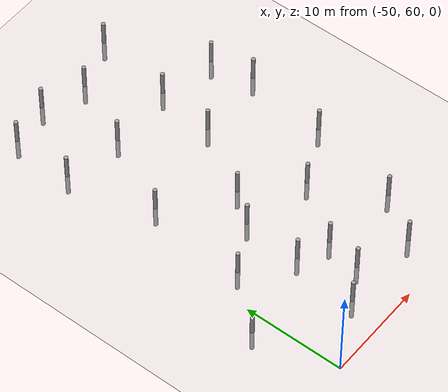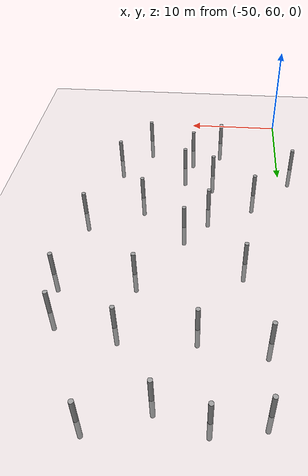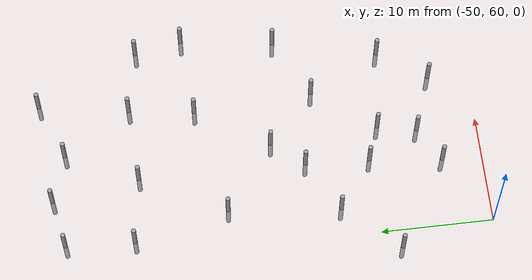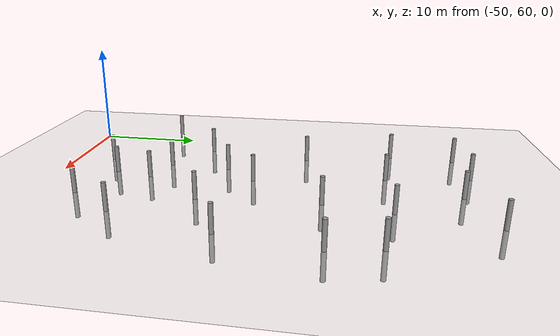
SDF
<sdf version="1.6">
 <world name="default">
  <model name="ground_plane">
   <static>1</static>
   <link name="link">
    <collision name="collision">
     <geometry><plane><normal>0 0 1</normal><size>100 100</size></plane></geometry>
     <surface><friction><ode><mu>100</mu><mu2>50</mu2></ode></friction></surface>
    </collision>
    <visual name="visual">
     <cast_shadows>0</cast_shadows>
     <geometry><plane><normal>0 0 1</normal><size>100 100</size></plane></geometry>
     <material>
      <script><uri>file://media/materials/scripts/gazebo.material</uri><name>Gazebo/Grey</name></script>
     </material>
    </visual>
   </link>
  </model>
  <model name="empty_pillars">
   <model name="empty_pillar_clone_6">
    <link name="link">
     <inertial>
      <mass>1</mass>
      <inertia><ixx>0.145833</ixx><ixy>0</ixy><ixz>0</ixz><iyy>0.145833</iyy><iyz>0</iyz><izz>0.125</izz></inertia>
     </inertial>
     <visual name="visual">
      <geometry><cylinder><radius>0.2</radius><length>5</length></cylinder></geometry>
      <material>
       <script><name>Gazebo/Grey</name><uri>file://media/materials/scripts/gazebo.material</uri></script>
       <shader type="vertex"><normal_map>__default__</normal_map></shader>
       <ambient>0.3 0.3 0.3 1</ambient>
       <diffuse>0.7 0.7 0.7 1</diffuse>
       <specular>0.01 0.01 0.01 1</specular>
       <emissive>0 0 0 1</emissive>
      </material>
     </visual>
     <collision name="collision">
      <geometry><cylinder><radius>0.05</radius><length>5</length></cylinder></geometry>
      <surface>
       <friction>
        <ode><mu>1</mu><mu2>1</mu2><fdir1>0 0 0</fdir1><slip1>0</slip1><slip2>0</slip2></ode>
        <torsional>
         <coefficient>1</coefficient>
         <patch_radius>0</patch_radius>
         <surface_radius>0</surface_radius>
         <use_patch_radius>1</use_patch_radius>
         <ode><slip>0</slip></ode>
        </torsional>
       </friction>
       <bounce><restitution_coefficient>0</restitution_coefficient><threshold>1e+06</threshold></bounce>
       <contact>
        <collide_without_contact>0</collide_without_contact>
        <collide_without_contact_bitmask>1</collide_without_contact_bitmask>
        <collide_bitmask>1</collide_bitmask>
        <ode>
         <soft_cfm>0</soft_cfm>
         <soft_erp>0.2</soft_erp>
         <kp>1e+13</kp>
         <kd>1</kd>
         <max_vel>0.01</max_vel>
         <min_depth>0</min_depth>
        </ode>
        <bullet>
         <split_impulse>1</split_impulse>
         <split_impulse_penetration_threshold>-0.01</split_impulse_penetration_threshold>
         <soft_cfm>0</soft_cfm>
         <soft_erp>0.2</soft_erp>
         <kp>1e+13</kp>
         <kd>1</kd>
        </bullet>
       </contact>
      </surface>
     </collision>
    </link>
    <static>0</static>
    <pose>24.9156 -9.11394 0 0 -0 0</pose>
   </model>
   <static>0</static>
   <pose>-76.4247 77.3975 0 0 -0 0</pose>
  </model>
  <model name="empty_pillars_0">
   <model name="empty_pillar">
    <link name="link">
     <inertial>
      <mass>1</mass>
      <inertia><ixx>0.145833</ixx><ixy>0</ixy><ixz>0</ixz><iyy>0.145833</iyy><iyz>0</iyz><izz>0.125</izz></inertia>
     </inertial>
     <visual name="visual">
      <geometry><cylinder><radius>0.2</radius><length>5</length></cylinder></geometry>
      <material>
       <script><name>Gazebo/Grey</name><uri>file://media/materials/scripts/gazebo.material</uri></script>
       <shader type="vertex"><normal_map>__default__</normal_map></shader>
       <ambient>0.3 0.3 0.3 1</ambient>
       <diffuse>0.7 0.7 0.7 1</diffuse>
       <specular>0.01 0.01 0.01 1</specular>
       <emissive>0 0 0 1</emissive>
      </material>
     </visual>
     <collision name="collision">
      <geometry><cylinder><radius>0.05</radius><length>5</length></cylinder></geometry>
      <surface>
       <friction>
        <ode><mu>1</mu><mu2>1</mu2><fdir1>0 0 0</fdir1><slip1>0</slip1><slip2>0</slip2></ode>
        <torsional>
         <coefficient>1</coefficient>
         <patch_radius>0</patch_radius>
         <surface_radius>0</surface_radius>
         <use_patch_radius>1</use_patch_radius>
         <ode><slip>0</slip></ode>
        </torsional>
       </friction>
       <bounce><restitution_coefficient>0</restitution_coefficient><threshold>1e+06</threshold></bounce>
       <contact>
        <collide_without_contact>0</collide_without_contact>
        <collide_without_contact_bitmask>1</collide_without_contact_bitmask>
        <collide_bitmask>1</collide_bitmask>
        <ode>
         <soft_cfm>0</soft_cfm>
         <soft_erp>0.2</soft_erp>
         <kp>1e+13</kp>
         <kd>1</kd>
         <max_vel>0.01</max_vel>
         <min_depth>0</min_depth>
        </ode>
        <bullet>
         <split_impulse>1</split_impulse>
         <split_impulse_penetration_threshold>-0.01</split_impulse_penetration_threshold>
         <soft_cfm>0</soft_cfm>
         <soft_erp>0.2</soft_erp>
         <kp>1e+13</kp>
         <kd>1</kd>
        </bullet>
       </contact>
      </surface>
     </collision>
    </link>
    <static>0</static>
    <pose>-3.84527 -0.717439 0 0 -0 0</pose>
   </model>
   <model name="empty_pillar_clone_13">
    <link name="link">
     <inertial>
      <mass>1</mass>
      <inertia><ixx>0.145833</ixx><ixy>0</ixy><ixz>0</ixz><iyy>0.145833</iyy><iyz>0</iyz><izz>0.125</izz></inertia>
     </inertial>
     <visual name="visual">
      <geometry><cylinder><radius>0.2</radius><length>5</length></cylinder></geometry>
      <material>
       <script><name>Gazebo/Grey</name><uri>file://media/materials/scripts/gazebo.material</uri></script>
       <shader type="vertex"><normal_map>__default__</normal_map></shader>
       <ambient>0.3 0.3 0.3 1</ambient>
       <diffuse>0.7 0.7 0.7 1</diffuse>
       <specular>0.01 0.01 0.01 1</specular>
       <emissive>0 0 0 1</emissive>
      </material>
     </visual>
     <collision name="collision">
      <geometry><cylinder><radius>0.05</radius><length>5</length></cylinder></geometry>
      <surface>
       <friction>
        <ode><mu>1</mu><mu2>1</mu2><fdir1>0 0 0</fdir1><slip1>0</slip1><slip2>0</slip2></ode>
        <torsional>
         <coefficient>1</coefficient>
         <patch_radius>0</patch_radius>
         <surface_radius>0</surface_radius>
         <use_patch_radius>1</use_patch_radius>
         <ode><slip>0</slip></ode>
        </torsional>
       </friction>
       <bounce><restitution_coefficient>0</restitution_coefficient><threshold>1e+06</threshold></bounce>
       <contact>
        <collide_without_contact>0</collide_without_contact>
        <collide_without_contact_bitmask>1</collide_without_contact_bitmask>
        <collide_bitmask>1</collide_bitmask>
        <ode>
         <soft_cfm>0</soft_cfm>
         <soft_erp>0.2</soft_erp>
         <kp>1e+13</kp>
         <kd>1</kd>
         <max_vel>0.01</max_vel>
         <min_depth>0</min_depth>
        </ode>
        <bullet>
         <split_impulse>1</split_impulse>
         <split_impulse_penetration_threshold>-0.01</split_impulse_penetration_threshold>
         <soft_cfm>0</soft_cfm>
         <soft_erp>0.2</soft_erp>
         <kp>1e+13</kp>
         <kd>1</kd>
        </bullet>
       </contact>
      </surface>
     </collision>
    </link>
    <static>0</static>
    <pose>-9.01464 -14.4259 0 0 -0 0</pose>
   </model>
   <model name="empty_pillar_clone_14">
    <link name="link">
     <inertial>
      <mass>1</mass>
      <inertia><ixx>0.145833</ixx><ixy>0</ixy><ixz>0</ixz><iyy>0.145833</iyy><iyz>0</iyz><izz>0.125</izz></inertia>
     </inertial>
     <visual name="visual">
      <geometry><cylinder><radius>0.2</radius><length>5</length></cylinder></geometry>
      <material>
       <script><name>Gazebo/Grey</name><uri>file://media/materials/scripts/gazebo.material</uri></script>
       <shader type="vertex"><normal_map>__default__</normal_map></shader>
       <ambient>0.3 0.3 0.3 1</ambient>
       <diffuse>0.7 0.7 0.7 1</diffuse>
       <specular>0.01 0.01 0.01 1</specular>
       <emissive>0 0 0 1</emissive>
      </material>
     </visual>
     <collision name="collision">
      <geometry><cylinder><radius>0.05</radius><length>5</length></cylinder></geometry>
      <surface>
       <friction>
        <ode><mu>1</mu><mu2>1</mu2><fdir1>0 0 0</fdir1><slip1>0</slip1><slip2>0</slip2></ode>
        <torsional>
         <coefficient>1</coefficient>
         <patch_radius>0</patch_radius>
         <surface_radius>0</surface_radius>
         <use_patch_radius>1</use_patch_radius>
         <ode><slip>0</slip></ode>
        </torsional>
       </friction>
       <bounce><restitution_coefficient>0</restitution_coefficient><threshold>1e+06</threshold></bounce>
       <contact>
        <collide_without_contact>0</collide_without_contact>
        <collide_without_contact_bitmask>1</collide_without_contact_bitmask>
        <collide_bitmask>1</collide_bitmask>
        <ode>
         <soft_cfm>0</soft_cfm>
         <soft_erp>0.2</soft_erp>
         <kp>1e+13</kp>
         <kd>1</kd>
         <max_vel>0.01</max_vel>
         <min_depth>0</min_depth>
        </ode>
        <bullet>
         <split_impulse>1</split_impulse>
         <split_impulse_penetration_threshold>-0.01</split_impulse_penetration_threshold>
         <soft_cfm>0</soft_cfm>
         <soft_erp>0.2</soft_erp>
         <kp>1e+13</kp>
         <kd>1</kd>
        </bullet>
       </contact>
      </surface>
     </collision>
    </link>
    <static>0</static>
    <pose>-14.0146 0.646152 0 0 -0 0</pose>
   </model>
   <model name="empty_pillar_clone_15">
    <link name="link">
     <inertial>
      <mass>1</mass>
      <inertia><ixx>0.145833</ixx><ixy>0</ixy><ixz>0</ixz><iyy>0.145833</iyy><iyz>0</iyz><izz>0.125</izz></inertia>
     </inertial>
     <visual name="visual">
      <geometry><cylinder><radius>0.2</radius><length>5</length></cylinder></geometry>
      <material>
       <script><name>Gazebo/Grey</name><uri>file://media/materials/scripts/gazebo.material</uri></script>
       <shader type="vertex"><normal_map>__default__</normal_map></shader>
       <ambient>0.3 0.3 0.3 1</ambient>
       <diffuse>0.7 0.7 0.7 1</diffuse>
       <specular>0.01 0.01 0.01 1</specular>
       <emissive>0 0 0 1</emissive>
      </material>
     </visual>
     <collision name="collision">
      <geometry><cylinder><radius>0.05</radius><length>5</length></cylinder></geometry>
      <surface>
       <friction>
        <ode><mu>1</mu><mu2>1</mu2><fdir1>0 0 0</fdir1><slip1>0</slip1><slip2>0</slip2></ode>
        <torsional>
         <coefficient>1</coefficient>
         <patch_radius>0</patch_radius>
         <surface_radius>0</surface_radius>
         <use_patch_radius>1</use_patch_radius>
         <ode><slip>0</slip></ode>
        </torsional>
       </friction>
       <bounce><restitution_coefficient>0</restitution_coefficient><threshold>1e+06</threshold></bounce>
       <contact>
        <collide_without_contact>0</collide_without_contact>
        <collide_without_contact_bitmask>1</collide_without_contact_bitmask>
        <collide_bitmask>1</collide_bitmask>
        <ode>
         <soft_cfm>0</soft_cfm>
         <soft_erp>0.2</soft_erp>
         <kp>1e+13</kp>
         <kd>1</kd>
         <max_vel>0.01</max_vel>
         <min_depth>0</min_depth>
        </ode>
        <bullet>
         <split_impulse>1</split_impulse>
         <split_impulse_penetration_threshold>-0.01</split_impulse_penetration_threshold>
         <soft_cfm>0</soft_cfm>
         <soft_erp>0.2</soft_erp>
         <kp>1e+13</kp>
         <kd>1</kd>
        </bullet>
       </contact>
      </surface>
     </collision>
    </link>
    <static>0</static>
    <pose>-9.37193 -3.58732 0 0 -0 0</pose>
   </model>
   <model name="empty_pillar_clone_16">
    <link name="link">
     <inertial>
      <mass>1</mass>
      <inertia><ixx>0.145833</ixx><ixy>0</ixy><ixz>0</ixz><iyy>0.145833</iyy><iyz>0</iyz><izz>0.125</izz></inertia>
     </inertial>
     <visual name="visual">
      <geometry><cylinder><radius>0.2</radius><length>5</length></cylinder></geometry>
      <material>
       <script><name>Gazebo/Grey</name><uri>file://media/materials/scripts/gazebo.material</uri></script>
       <shader type="vertex"><normal_map>__default__</normal_map></shader>
       <ambient>0.3 0.3 0.3 1</ambient>
       <diffuse>0.7 0.7 0.7 1</diffuse>
       <specular>0.01 0.01 0.01 1</specular>
       <emissive>0 0 0 1</emissive>
      </material>
     </visual>
     <collision name="collision">
      <geometry><cylinder><radius>0.05</radius><length>5</length></cylinder></geometry>
      <surface>
       <friction>
        <ode><mu>1</mu><mu2>1</mu2><fdir1>0 0 0</fdir1><slip1>0</slip1><slip2>0</slip2></ode>
        <torsional>
         <coefficient>1</coefficient>
         <patch_radius>0</patch_radius>
         <surface_radius>0</surface_radius>
         <use_patch_radius>1</use_patch_radius>
         <ode><slip>0</slip></ode>
        </torsional>
       </friction>
       <bounce><restitution_coefficient>0</restitution_coefficient><threshold>1e+06</threshold></bounce>
       <contact>
        <collide_without_contact>0</collide_without_contact>
        <collide_without_contact_bitmask>1</collide_without_contact_bitmask>
        <collide_bitmask>1</collide_bitmask>
        <ode>
         <soft_cfm>0</soft_cfm>
         <soft_erp>0.2</soft_erp>
         <kp>1e+13</kp>
         <kd>1</kd>
         <max_vel>0.01</max_vel>
         <min_depth>0</min_depth>
        </ode>
        <bullet>
         <split_impulse>1</split_impulse>
         <split_impulse_penetration_threshold>-0.01</split_impulse_penetration_threshold>
         <soft_cfm>0</soft_cfm>
         <soft_erp>0.2</soft_erp>
         <kp>1e+13</kp>
         <kd>1</kd>
        </bullet>
       </contact>
      </surface>
     </collision>
    </link>
    <static>0</static>
    <pose>-9.20789 13.0504 0 0 -0 0</pose>
   </model>
   <model name="empty_pillar_clone_17">
    <link name="link">
     <inertial>
      <mass>1</mass>
      <inertia><ixx>0.145833</ixx><ixy>0</ixy><ixz>0</ixz><iyy>0.145833</iyy><iyz>0</iyz><izz>0.125</izz></inertia>
     </inertial>
     <visual name="visual">
      <geometry><cylinder><radius>0.2</radius><length>5</length></cylinder></geometry>
      <material>
       <script><name>Gazebo/Grey</name><uri>file://media/materials/scripts/gazebo.material</uri></script>
       <shader type="vertex"><normal_map>__default__</normal_map></shader>
       <ambient>0.3 0.3 0.3 1</ambient>
       <diffuse>0.7 0.7 0.7 1</diffuse>
       <specular>0.01 0.01 0.01 1</specular>
       <emissive>0 0 0 1</emissive>
      </material>
     </visual>
     <collision name="collision">
      <geometry><cylinder><radius>0.05</radius><length>5</length></cylinder></geometry>
      <surface>
       <friction>
        <ode><mu>1</mu><mu2>1</mu2><fdir1>0 0 0</fdir1><slip1>0</slip1><slip2>0</slip2></ode>
        <torsional>
         <coefficient>1</coefficient>
         <patch_radius>0</patch_radius>
         <surface_radius>0</surface_radius>
         <use_patch_radius>1</use_patch_radius>
         <ode><slip>0</slip></ode>
        </torsional>
       </friction>
       <bounce><restitution_coefficient>0</restitution_coefficient><threshold>1e+06</threshold></bounce>
       <contact>
        <collide_without_contact>0</collide_without_contact>
        <collide_without_contact_bitmask>1</collide_without_contact_bitmask>
        <collide_bitmask>1</collide_bitmask>
        <ode>
         <soft_cfm>0</soft_cfm>
         <soft_erp>0.2</soft_erp>
         <kp>1e+13</kp>
         <kd>1</kd>
         <max_vel>0.01</max_vel>
         <min_depth>0</min_depth>
        </ode>
        <bullet>
         <split_impulse>1</split_impulse>
         <split_impulse_penetration_threshold>-0.01</split_impulse_penetration_threshold>
         <soft_cfm>0</soft_cfm>
         <soft_erp>0.2</soft_erp>
         <kp>1e+13</kp>
         <kd>1</kd>
        </bullet>
       </contact>
      </surface>
     </collision>
    </link>
    <static>0</static>
    <pose>-16.0449 12.755 0 0 -0 0</pose>
   </model>
   <model name="empty_pillar_clone_18">
    <link name="link">
     <inertial>
      <mass>1</mass>
      <inertia><ixx>0.145833</ixx><ixy>0</ixy><ixz>0</ixz><iyy>0.145833</iyy><iyz>0</iyz><izz>0.125</izz></inertia>
     </inertial>
     <visual name="visual">
      <geometry><cylinder><radius>0.2</radius><length>5</length></cylinder></geometry>
      <material>
       <script><name>Gazebo/Grey</name><uri>file://media/materials/scripts/gazebo.material</uri></script>
       <shader type="vertex"><normal_map>__default__</normal_map></shader>
       <ambient>0.3 0.3 0.3 1</ambient>
       <diffuse>0.7 0.7 0.7 1</diffuse>
       <specular>0.01 0.01 0.01 1</specular>
       <emissive>0 0 0 1</emissive>
      </material>
     </visual>
     <collision name="collision">
      <geometry><cylinder><radius>0.05</radius><length>5</length></cylinder></geometry>
      <surface>
       <friction>
        <ode><mu>1</mu><mu2>1</mu2><fdir1>0 0 0</fdir1><slip1>0</slip1><slip2>0</slip2></ode>
        <torsional>
         <coefficient>1</coefficient>
         <patch_radius>0</patch_radius>
         <surface_radius>0</surface_radius>
         <use_patch_radius>1</use_patch_radius>
         <ode><slip>0</slip></ode>
        </torsional>
       </friction>
       <bounce><restitution_coefficient>0</restitution_coefficient><threshold>1e+06</threshold></bounce>
       <contact>
        <collide_without_contact>0</collide_without_contact>
        <collide_without_contact_bitmask>1</collide_without_contact_bitmask>
        <collide_bitmask>1</collide_bitmask>
        <ode>
         <soft_cfm>0</soft_cfm>
         <soft_erp>0.2</soft_erp>
         <kp>1e+13</kp>
         <kd>1</kd>
         <max_vel>0.01</max_vel>
         <min_depth>0</min_depth>
        </ode>
        <bullet>
         <split_impulse>1</split_impulse>
         <split_impulse_penetration_threshold>-0.01</split_impulse_penetration_threshold>
         <soft_cfm>0</soft_cfm>
         <soft_erp>0.2</soft_erp>
         <kp>1e+13</kp>
         <kd>1</kd>
        </bullet>
       </contact>
      </surface>
     </collision>
    </link>
    <static>0</static>
    <pose>-20.0146 5.15966 0 0 -0 0</pose>
   </model>
   <model name="empty_pillar_clone_19">
    <link name="link">
     <inertial>
      <mass>1</mass>
      <inertia><ixx>0.145833</ixx><ixy>0</ixy><ixz>0</ixz><iyy>0.145833</iyy><iyz>0</iyz><izz>0.125</izz></inertia>
     </inertial>
     <visual name="visual">
      <geometry><cylinder><radius>0.2</radius><length>5</length></cylinder></geometry>
      <material>
       <script><name>Gazebo/Grey</name><uri>file://media/materials/scripts/gazebo.material</uri></script>
       <shader type="vertex"><normal_map>__default__</normal_map></shader>
       <ambient>0.3 0.3 0.3 1</ambient>
       <diffuse>0.7 0.7 0.7 1</diffuse>
       <specular>0.01 0.01 0.01 1</specular>
       <emissive>0 0 0 1</emissive>
      </material>
     </visual>
     <collision name="collision">
      <geometry><cylinder><radius>0.05</radius><length>5</length></cylinder></geometry>
      <surface>
       <friction>
        <ode><mu>1</mu><mu2>1</mu2><fdir1>0 0 0</fdir1><slip1>0</slip1><slip2>0</slip2></ode>
        <torsional>
         <coefficient>1</coefficient>
         <patch_radius>0</patch_radius>
         <surface_radius>0</surface_radius>
         <use_patch_radius>1</use_patch_radius>
         <ode><slip>0</slip></ode>
        </torsional>
       </friction>
       <bounce><restitution_coefficient>0</restitution_coefficient><threshold>1e+06</threshold></bounce>
       <contact>
        <collide_without_contact>0</collide_without_contact>
        <collide_without_contact_bitmask>1</collide_without_contact_bitmask>
        <collide_bitmask>1</collide_bitmask>
        <ode>
         <soft_cfm>0</soft_cfm>
         <soft_erp>0.2</soft_erp>
         <kp>1e+13</kp>
         <kd>1</kd>
         <max_vel>0.01</max_vel>
         <min_depth>0</min_depth>
        </ode>
        <bullet>
         <split_impulse>1</split_impulse>
         <split_impulse_penetration_threshold>-0.01</split_impulse_penetration_threshold>
         <soft_cfm>0</soft_cfm>
         <soft_erp>0.2</soft_erp>
         <kp>1e+13</kp>
         <kd>1</kd>
        </bullet>
       </contact>
      </surface>
     </collision>
    </link>
    <static>0</static>
    <pose>-10.0146 7.15966 0 0 -0 0</pose>
   </model>
   <model name="empty_pillar_clone_20">
    <link name="link">
     <inertial>
      <mass>1</mass>
      <inertia><ixx>0.145833</ixx><ixy>0</ixy><ixz>0</ixz><iyy>0.145833</iyy><iyz>0</iyz><izz>0.125</izz></inertia>
     </inertial>
     <visual name="visual">
      <geometry><cylinder><radius>0.2</radius><length>5</length></cylinder></geometry>
      <material>
       <script><name>Gazebo/Grey</name><uri>file://media/materials/scripts/gazebo.material</uri></script>
       <shader type="vertex"><normal_map>__default__</normal_map></shader>
       <ambient>0.3 0.3 0.3 1</ambient>
       <diffuse>0.7 0.7 0.7 1</diffuse>
       <specular>0.01 0.01 0.01 1</specular>
       <emissive>0 0 0 1</emissive>
      </material>
     </visual>
     <collision name="collision">
      <geometry><cylinder><radius>0.05</radius><length>5</length></cylinder></geometry>
      <surface>
       <friction>
        <ode><mu>1</mu><mu2>1</mu2><fdir1>0 0 0</fdir1><slip1>0</slip1><slip2>0</slip2></ode>
        <torsional>
         <coefficient>1</coefficient>
         <patch_radius>0</patch_radius>
         <surface_radius>0</surface_radius>
         <use_patch_radius>1</use_patch_radius>
         <ode><slip>0</slip></ode>
        </torsional>
       </friction>
       <bounce><restitution_coefficient>0</restitution_coefficient><threshold>1e+06</threshold></bounce>
       <contact>
        <collide_without_contact>0</collide_without_contact>
        <collide_without_contact_bitmask>1</collide_without_contact_bitmask>
        <collide_bitmask>1</collide_bitmask>
        <ode>
         <soft_cfm>0</soft_cfm>
         <soft_erp>0.2</soft_erp>
         <kp>1e+13</kp>
         <kd>1</kd>
         <max_vel>0.01</max_vel>
         <min_depth>0</min_depth>
        </ode>
        <bullet>
         <split_impulse>1</split_impulse>
         <split_impulse_penetration_threshold>-0.01</split_impulse_penetration_threshold>
         <soft_cfm>0</soft_cfm>
         <soft_erp>0.2</soft_erp>
         <kp>1e+13</kp>
         <kd>1</kd>
        </bullet>
       </contact>
      </surface>
     </collision>
    </link>
    <static>0</static>
    <pose>-13.0146 19.1597 0 0 -0 0</pose>
   </model>
   <model name="empty_pillar_clone_21">
    <link name="link">
     <inertial>
      <mass>1</mass>
      <inertia><ixx>0.145833</ixx><ixy>0</ixy><ixz>0</ixz><iyy>0.145833</iyy><iyz>0</iyz><izz>0.125</izz></inertia>
     </inertial>
     <visual name="visual">
      <geometry><cylinder><radius>0.2</radius><length>5</length></cylinder></geometry>
      <material>
       <script><name>Gazebo/Grey</name><uri>file://media/materials/scripts/gazebo.material</uri></script>
       <shader type="vertex"><normal_map>__default__</normal_map></shader>
       <ambient>0.3 0.3 0.3 1</ambient>
       <diffuse>0.7 0.7 0.7 1</diffuse>
       <specular>0.01 0.01 0.01 1</specular>
       <emissive>0 0 0 1</emissive>
      </material>
     </visual>
     <collision name="collision">
      <geometry><cylinder><radius>0.05</radius><length>5</length></cylinder></geometry>
      <surface>
       <friction>
        <ode><mu>1</mu><mu2>1</mu2><fdir1>0 0 0</fdir1><slip1>0</slip1><slip2>0</slip2></ode>
        <torsional>
         <coefficient>1</coefficient>
         <patch_radius>0</patch_radius>
         <surface_radius>0</surface_radius>
         <use_patch_radius>1</use_patch_radius>
         <ode><slip>0</slip></ode>
        </torsional>
       </friction>
       <bounce><restitution_coefficient>0</restitution_coefficient><threshold>1e+06</threshold></bounce>
       <contact>
        <collide_without_contact>0</collide_without_contact>
        <collide_without_contact_bitmask>1</collide_without_contact_bitmask>
        <collide_bitmask>1</collide_bitmask>
        <ode>
         <soft_cfm>0</soft_cfm>
         <soft_erp>0.2</soft_erp>
         <kp>1e+13</kp>
         <kd>1</kd>
         <max_vel>0.01</max_vel>
         <min_depth>0</min_depth>
        </ode>
        <bullet>
         <split_impulse>1</split_impulse>
         <split_impulse_penetration_threshold>-0.01</split_impulse_penetration_threshold>
         <soft_cfm>0</soft_cfm>
         <soft_erp>0.2</soft_erp>
         <kp>1e+13</kp>
         <kd>1</kd>
        </bullet>
       </contact>
      </surface>
     </collision>
    </link>
    <static>0</static>
    <pose>-21.7273 19.7662 0 0 -0 0</pose>
   </model>
   <model name="empty_pillar_clone_22">
    <link name="link">
     <inertial>
      <mass>1</mass>
      <inertia><ixx>0.145833</ixx><ixy>0</ixy><ixz>0</ixz><iyy>0.145833</iyy><iyz>0</iyz><izz>0.125</izz></inertia>
     </inertial>
     <visual name="visual">
      <geometry><cylinder><radius>0.2</radius><length>5</length></cylinder></geometry>
      <material>
       <script><name>Gazebo/Grey</name><uri>file://media/materials/scripts/gazebo.material</uri></script>
       <shader type="vertex"><normal_map>__default__</normal_map></shader>
       <ambient>0.3 0.3 0.3 1</ambient>
       <diffuse>0.7 0.7 0.7 1</diffuse>
       <specular>0.01 0.01 0.01 1</specular>
       <emissive>0 0 0 1</emissive>
      </material>
     </visual>
     <collision name="collision">
      <geometry><cylinder><radius>0.05</radius><length>5</length></cylinder></geometry>
      <surface>
       <friction>
        <ode><mu>1</mu><mu2>1</mu2><fdir1>0 0 0</fdir1><slip1>0</slip1><slip2>0</slip2></ode>
        <torsional>
         <coefficient>1</coefficient>
         <patch_radius>0</patch_radius>
         <surface_radius>0</surface_radius>
         <use_patch_radius>1</use_patch_radius>
         <ode><slip>0</slip></ode>
        </torsional>
       </friction>
       <bounce><restitution_coefficient>0</restitution_coefficient><threshold>1e+06</threshold></bounce>
       <contact>
        <collide_without_contact>0</collide_without_contact>
        <collide_without_contact_bitmask>1</collide_without_contact_bitmask>
        <collide_bitmask>1</collide_bitmask>
        <ode>
         <soft_cfm>0</soft_cfm>
         <soft_erp>0.2</soft_erp>
         <kp>1e+13</kp>
         <kd>1</kd>
         <max_vel>0.01</max_vel>
         <min_depth>0</min_depth>
        </ode>
        <bullet>
         <split_impulse>1</split_impulse>
         <split_impulse_penetration_threshold>-0.01</split_impulse_penetration_threshold>
         <soft_cfm>0</soft_cfm>
         <soft_erp>0.2</soft_erp>
         <kp>1e+13</kp>
         <kd>1</kd>
        </bullet>
       </contact>
      </surface>
     </collision>
    </link>
    <static>0</static>
    <pose>-17.3667 20.5782 0 0 -0 0</pose>
   </model>
   <model name="empty_pillar_clone_24">
    <link name="link">
     <inertial>
      <mass>1</mass>
      <inertia><ixx>0.145833</ixx><ixy>0</ixy><ixz>0</ixz><iyy>0.145833</iyy><iyz>0</iyz><izz>0.125</izz></inertia>
     </inertial>
     <visual name="visual">
      <geometry><cylinder><radius>0.2</radius><length>5</length></cylinder></geometry>
      <material>
       <script><name>Gazebo/Grey</name><uri>file://media/materials/scripts/gazebo.material</uri></script>
       <shader type="vertex"><normal_map>__default__</normal_map></shader>
       <ambient>0.3 0.3 0.3 1</ambient>
       <diffuse>0.7 0.7 0.7 1</diffuse>
       <specular>0.01 0.01 0.01 1</specular>
       <emissive>0 0 0 1</emissive>
      </material>
     </visual>
     <collision name="collision">
      <geometry><cylinder><radius>0.05</radius><length>5</length></cylinder></geometry>
      <surface>
       <friction>
        <ode><mu>1</mu><mu2>1</mu2><fdir1>0 0 0</fdir1><slip1>0</slip1><slip2>0</slip2></ode>
        <torsional>
         <coefficient>1</coefficient>
         <patch_radius>0</patch_radius>
         <surface_radius>0</surface_radius>
         <use_patch_radius>1</use_patch_radius>
         <ode><slip>0</slip></ode>
        </torsional>
       </friction>
       <bounce><restitution_coefficient>0</restitution_coefficient><threshold>1e+06</threshold></bounce>
       <contact>
        <collide_without_contact>0</collide_without_contact>
        <collide_without_contact_bitmask>1</collide_without_contact_bitmask>
        <collide_bitmask>1</collide_bitmask>
        <ode>
         <soft_cfm>0</soft_cfm>
         <soft_erp>0.2</soft_erp>
         <kp>1e+13</kp>
         <kd>1</kd>
         <max_vel>0.01</max_vel>
         <min_depth>0</min_depth>
        </ode>
        <bullet>
         <split_impulse>1</split_impulse>
         <split_impulse_penetration_threshold>-0.01</split_impulse_penetration_threshold>
         <soft_cfm>0</soft_cfm>
         <soft_erp>0.2</soft_erp>
         <kp>1e+13</kp>
         <kd>1</kd>
        </bullet>
       </contact>
      </surface>
     </collision>
    </link>
    <static>0</static>
    <pose>-3.46957 11.9413 0 0 -0 0</pose>
   </model>
   <model name="empty_pillar_clone_25">
    <link name="link">
     <inertial>
      <mass>1</mass>
      <inertia><ixx>0.145833</ixx><ixy>0</ixy><ixz>0</ixz><iyy>0.145833</iyy><iyz>0</iyz><izz>0.125</izz></inertia>
     </inertial>
     <visual name="visual">
      <geometry><cylinder><radius>0.2</radius><length>5</length></cylinder></geometry>
      <material>
       <script><name>Gazebo/Grey</name><uri>file://media/materials/scripts/gazebo.material</uri></script>
       <shader type="vertex"><normal_map>__default__</normal_map></shader>
       <ambient>0.3 0.3 0.3 1</ambient>
       <diffuse>0.7 0.7 0.7 1</diffuse>
       <specular>0.01 0.01 0.01 1</specular>
       <emissive>0 0 0 1</emissive>
      </material>
     </visual>
     <collision name="collision">
      <geometry><cylinder><radius>0.05</radius><length>5</length></cylinder></geometry>
      <surface>
       <friction>
        <ode><mu>1</mu><mu2>1</mu2><fdir1>0 0 0</fdir1><slip1>0</slip1><slip2>0</slip2></ode>
        <torsional>
         <coefficient>1</coefficient>
         <patch_radius>0</patch_radius>
         <surface_radius>0</surface_radius>
         <use_patch_radius>1</use_patch_radius>
         <ode><slip>0</slip></ode>
        </torsional>
       </friction>
       <bounce><restitution_coefficient>0</restitution_coefficient><threshold>1e+06</threshold></bounce>
       <contact>
        <collide_without_contact>0</collide_without_contact>
        <collide_without_contact_bitmask>1</collide_without_contact_bitmask>
        <collide_bitmask>1</collide_bitmask>
        <ode>
         <soft_cfm>0</soft_cfm>
         <soft_erp>0.2</soft_erp>
         <kp>1e+13</kp>
         <kd>1</kd>
         <max_vel>0.01</max_vel>
         <min_depth>0</min_depth>
        </ode>
        <bullet>
         <split_impulse>1</split_impulse>
         <split_impulse_penetration_threshold>-0.01</split_impulse_penetration_threshold>
         <soft_cfm>0</soft_cfm>
         <soft_erp>0.2</soft_erp>
         <kp>1e+13</kp>
         <kd>1</kd>
        </bullet>
       </contact>
      </surface>
     </collision>
    </link>
    <static>0</static>
    <pose>-7.86239 21.1314 0 0 -0 0</pose>
   </model>
   <model name="empty_pillar_clone_36">
    <link name="link">
     <inertial>
      <mass>1</mass>
      <inertia><ixx>0.145833</ixx><ixy>0</ixy><ixz>0</ixz><iyy>0.145833</iyy><iyz>0</iyz><izz>0.125</izz></inertia>
     </inertial>
     <visual name="visual">
      <geometry><cylinder><radius>0.2</radius><length>5</length></cylinder></geometry>
      <material>
       <script><name>Gazebo/Grey</name><uri>file://media/materials/scripts/gazebo.material</uri></script>
       <shader type="vertex"><normal_map>__default__</normal_map></shader>
       <ambient>0.3 0.3 0.3 1</ambient>
       <diffuse>0.7 0.7 0.7 1</diffuse>
       <specular>0.01 0.01 0.01 1</specular>
       <emissive>0 0 0 1</emissive>
      </material>
     </visual>
     <collision name="collision">
      <geometry><cylinder><radius>0.05</radius><length>5</length></cylinder></geometry>
      <surface>
       <friction>
        <ode><mu>1</mu><mu2>1</mu2><fdir1>0 0 0</fdir1><slip1>0</slip1><slip2>0</slip2></ode>
        <torsional>
         <coefficient>1</coefficient>
         <patch_radius>0</patch_radius>
         <surface_radius>0</surface_radius>
         <use_patch_radius>1</use_patch_radius>
         <ode><slip>0</slip></ode>
        </torsional>
       </friction>
       <bounce><restitution_coefficient>0</restitution_coefficient><threshold>1e+06</threshold></bounce>
       <contact>
        <collide_without_contact>0</collide_without_contact>
        <collide_without_contact_bitmask>1</collide_without_contact_bitmask>
        <collide_bitmask>1</collide_bitmask>
        <ode>
         <soft_cfm>0</soft_cfm>
         <soft_erp>0.2</soft_erp>
         <kp>1e+13</kp>
         <kd>1</kd>
         <max_vel>0.01</max_vel>
         <min_depth>0</min_depth>
        </ode>
        <bullet>
         <split_impulse>1</split_impulse>
         <split_impulse_penetration_threshold>-0.01</split_impulse_penetration_threshold>
         <soft_cfm>0</soft_cfm>
         <soft_erp>0.2</soft_erp>
         <kp>1e+13</kp>
         <kd>1</kd>
        </bullet>
       </contact>
      </surface>
     </collision>
    </link>
    <static>0</static>
    <pose>-21.0146 -4.84034 0 0 -0 0</pose>
   </model>
   <model name="empty_pillar_clone_37">
    <link name="link">
     <inertial>
      <mass>1</mass>
      <inertia><ixx>0.145833</ixx><ixy>0</ixy><ixz>0</ixz><iyy>0.145833</iyy><iyz>0</iyz><izz>0.125</izz></inertia>
     </inertial>
     <visual name="visual">
      <geometry><cylinder><radius>0.2</radius><length>5</length></cylinder></geometry>
      <material>
       <script><name>Gazebo/Grey</name><uri>file://media/materials/scripts/gazebo.material</uri></script>
       <shader type="vertex"><normal_map>__default__</normal_map></shader>
       <ambient>0.3 0.3 0.3 1</ambient>
       <diffuse>0.7 0.7 0.7 1</diffuse>
       <specular>0.01 0.01 0.01 1</specular>
       <emissive>0 0 0 1</emissive>
      </material>
     </visual>
     <collision name="collision">
      <geometry><cylinder><radius>0.05</radius><length>5</length></cylinder></geometry>
      <surface>
       <friction>
        <ode><mu>1</mu><mu2>1</mu2><fdir1>0 0 0</fdir1><slip1>0</slip1><slip2>0</slip2></ode>
        <torsional>
         <coefficient>1</coefficient>
         <patch_radius>0</patch_radius>
         <surface_radius>0</surface_radius>
         <use_patch_radius>1</use_patch_radius>
         <ode><slip>0</slip></ode>
        </torsional>
       </friction>
       <bounce><restitution_coefficient>0</restitution_coefficient><threshold>1e+06</threshold></bounce>
       <contact>
        <collide_without_contact>0</collide_without_contact>
        <collide_without_contact_bitmask>1</collide_without_contact_bitmask>
        <collide_bitmask>1</collide_bitmask>
        <ode>
         <soft_cfm>0</soft_cfm>
         <soft_erp>0.2</soft_erp>
         <kp>1e+13</kp>
         <kd>1</kd>
         <max_vel>0.01</max_vel>
         <min_depth>0</min_depth>
        </ode>
        <bullet>
         <split_impulse>1</split_impulse>
         <split_impulse_penetration_threshold>-0.01</split_impulse_penetration_threshold>
         <soft_cfm>0</soft_cfm>
         <soft_erp>0.2</soft_erp>
         <kp>1e+13</kp>
         <kd>1</kd>
        </bullet>
       </contact>
      </surface>
     </collision>
    </link>
    <static>0</static>
    <pose>-16.6035 -7.98282 0 0 -0 0</pose>
   </model>
   <model name="empty_pillar_clone_38">
    <link name="link">
     <inertial>
      <mass>1</mass>
      <inertia><ixx>0.145833</ixx><ixy>0</ixy><ixz>0</ixz><iyy>0.145833</iyy><iyz>0</iyz><izz>0.125</izz></inertia>
     </inertial>
     <visual name="visual">
      <geometry><cylinder><radius>0.2</radius><length>5</length></cylinder></geometry>
      <material>
       <script><name>Gazebo/Grey</name><uri>file://media/materials/scripts/gazebo.material</uri></script>
       <shader type="vertex"><normal_map>__default__</normal_map></shader>
       <ambient>0.3 0.3 0.3 1</ambient>
       <diffuse>0.7 0.7 0.7 1</diffuse>
       <specular>0.01 0.01 0.01 1</specular>
       <emissive>0 0 0 1</emissive>
      </material>
     </visual>
     <collision name="collision">
      <geometry><cylinder><radius>0.05</radius><length>5</length></cylinder></geometry>
      <surface>
       <friction>
        <ode><mu>1</mu><mu2>1</mu2><fdir1>0 0 0</fdir1><slip1>0</slip1><slip2>0</slip2></ode>
        <torsional>
         <coefficient>1</coefficient>
         <patch_radius>0</patch_radius>
         <surface_radius>0</surface_radius>
         <use_patch_radius>1</use_patch_radius>
         <ode><slip>0</slip></ode>
        </torsional>
       </friction>
       <bounce><restitution_coefficient>0</restitution_coefficient><threshold>1e+06</threshold></bounce>
       <contact>
        <collide_without_contact>0</collide_without_contact>
        <collide_without_contact_bitmask>1</collide_without_contact_bitmask>
        <collide_bitmask>1</collide_bitmask>
        <ode>
         <soft_cfm>0</soft_cfm>
         <soft_erp>0.2</soft_erp>
         <kp>1e+13</kp>
         <kd>1</kd>
         <max_vel>0.01</max_vel>
         <min_depth>0</min_depth>
        </ode>
        <bullet>
         <split_impulse>1</split_impulse>
         <split_impulse_penetration_threshold>-0.01</split_impulse_penetration_threshold>
         <soft_cfm>0</soft_cfm>
         <soft_erp>0.2</soft_erp>
         <kp>1e+13</kp>
         <kd>1</kd>
        </bullet>
       </contact>
      </surface>
     </collision>
    </link>
    <static>0</static>
    <pose>-16.33 -2.21607 0 0 -0 0</pose>
   </model>
   <model name="empty_pillar_clone_39">
    <link name="link">
     <inertial>
      <mass>1</mass>
      <inertia><ixx>0.145833</ixx><ixy>0</ixy><ixz>0</ixz><iyy>0.145833</iyy><iyz>0</iyz><izz>0.125</izz></inertia>
     </inertial>
     <visual name="visual">
      <geometry><cylinder><radius>0.2</radius><length>5</length></cylinder></geometry>
      <material>
       <script><name>Gazebo/Grey</name><uri>file://media/materials/scripts/gazebo.material</uri></script>
       <shader type="vertex"><normal_map>__default__</normal_map></shader>
       <ambient>0.3 0.3 0.3 1</ambient>
       <diffuse>0.7 0.7 0.7 1</diffuse>
       <specular>0.01 0.01 0.01 1</specular>
       <emissive>0 0 0 1</emissive>
      </material>
     </visual>
     <collision name="collision">
      <geometry><cylinder><radius>0.05</radius><length>5</length></cylinder></geometry>
      <surface>
       <friction>
        <ode><mu>1</mu><mu2>1</mu2><fdir1>0 0 0</fdir1><slip1>0</slip1><slip2>0</slip2></ode>
        <torsional>
         <coefficient>1</coefficient>
         <patch_radius>0</patch_radius>
         <surface_radius>0</surface_radius>
         <use_patch_radius>1</use_patch_radius>
         <ode><slip>0</slip></ode>
        </torsional>
       </friction>
       <bounce><restitution_coefficient>0</restitution_coefficient><threshold>1e+06</threshold></bounce>
       <contact>
        <collide_without_contact>0</collide_without_contact>
        <collide_without_contact_bitmask>1</collide_without_contact_bitmask>
        <collide_bitmask>1</collide_bitmask>
        <ode>
         <soft_cfm>0</soft_cfm>
         <soft_erp>0.2</soft_erp>
         <kp>1e+13</kp>
         <kd>1</kd>
         <max_vel>0.01</max_vel>
         <min_depth>0</min_depth>
        </ode>
        <bullet>
         <split_impulse>1</split_impulse>
         <split_impulse_penetration_threshold>-0.01</split_impulse_penetration_threshold>
         <soft_cfm>0</soft_cfm>
         <soft_erp>0.2</soft_erp>
         <kp>1e+13</kp>
         <kd>1</kd>
        </bullet>
       </contact>
      </surface>
     </collision>
    </link>
    <static>0</static>
    <pose>-13.4361 -9.12638 0 0 -0 0</pose>
   </model>
   <model name="empty_pillar_clone_40">
    <link name="link">
     <inertial>
      <mass>1</mass>
      <inertia><ixx>0.145833</ixx><ixy>0</ixy><ixz>0</ixz><iyy>0.145833</iyy><iyz>0</iyz><izz>0.125</izz></inertia>
     </inertial>
     <visual name="visual">
      <geometry><cylinder><radius>0.2</radius><length>5</length></cylinder></geometry>
      <material>
       <script><name>Gazebo/Grey</name><uri>file://media/materials/scripts/gazebo.material</uri></script>
       <shader type="vertex"><normal_map>__default__</normal_map></shader>
       <ambient>0.3 0.3 0.3 1</ambient>
       <diffuse>0.7 0.7 0.7 1</diffuse>
       <specular>0.01 0.01 0.01 1</specular>
       <emissive>0 0 0 1</emissive>
      </material>
     </visual>
     <collision name="collision">
      <geometry><cylinder><radius>0.05</radius><length>5</length></cylinder></geometry>
      <surface>
       <friction>
        <ode><mu>1</mu><mu2>1</mu2><fdir1>0 0 0</fdir1><slip1>0</slip1><slip2>0</slip2></ode>
        <torsional>
         <coefficient>1</coefficient>
         <patch_radius>0</patch_radius>
         <surface_radius>0</surface_radius>
         <use_patch_radius>1</use_patch_radius>
         <ode><slip>0</slip></ode>
        </torsional>
       </friction>
       <bounce><restitution_coefficient>0</restitution_coefficient><threshold>1e+06</threshold></bounce>
       <contact>
        <collide_without_contact>0</collide_without_contact>
        <collide_without_contact_bitmask>1</collide_without_contact_bitmask>
        <collide_bitmask>1</collide_bitmask>
        <ode>
         <soft_cfm>0</soft_cfm>
         <soft_erp>0.2</soft_erp>
         <kp>1e+13</kp>
         <kd>1</kd>
         <max_vel>0.01</max_vel>
         <min_depth>0</min_depth>
        </ode>
        <bullet>
         <split_impulse>1</split_impulse>
         <split_impulse_penetration_threshold>-0.01</split_impulse_penetration_threshold>
         <soft_cfm>0</soft_cfm>
         <soft_erp>0.2</soft_erp>
         <kp>1e+13</kp>
         <kd>1</kd>
        </bullet>
       </contact>
      </surface>
     </collision>
    </link>
    <static>0</static>
    <pose>-17.318 -14.4851 0 0 -0 0</pose>
   </model>
   <model name="empty_pillar_clone_41">
    <link name="link">
     <inertial>
      <mass>1</mass>
      <inertia><ixx>0.145833</ixx><ixy>0</ixy><ixz>0</ixz><iyy>0.145833</iyy><iyz>0</iyz><izz>0.125</izz></inertia>
     </inertial>
     <visual name="visual">
      <geometry><cylinder><radius>0.2</radius><length>5</length></cylinder></geometry>
      <material>
       <script><name>Gazebo/Grey</name><uri>file://media/materials/scripts/gazebo.material</uri></script>
       <shader type="vertex"><normal_map>__default__</normal_map></shader>
       <ambient>0.3 0.3 0.3 1</ambient>
       <diffuse>0.7 0.7 0.7 1</diffuse>
       <specular>0.01 0.01 0.01 1</specular>
       <emissive>0 0 0 1</emissive>
      </material>
     </visual>
     <collision name="collision">
      <geometry><cylinder><radius>0.05</radius><length>5</length></cylinder></geometry>
      <surface>
       <friction>
        <ode><mu>1</mu><mu2>1</mu2><fdir1>0 0 0</fdir1><slip1>0</slip1><slip2>0</slip2></ode>
        <torsional>
         <coefficient>1</coefficient>
         <patch_radius>0</patch_radius>
         <surface_radius>0</surface_radius>
         <use_patch_radius>1</use_patch_radius>
         <ode><slip>0</slip></ode>
        </torsional>
       </friction>
       <bounce><restitution_coefficient>0</restitution_coefficient><threshold>1e+06</threshold></bounce>
       <contact>
        <collide_without_contact>0</collide_without_contact>
        <collide_without_contact_bitmask>1</collide_without_contact_bitmask>
        <collide_bitmask>1</collide_bitmask>
        <ode>
         <soft_cfm>0</soft_cfm>
         <soft_erp>0.2</soft_erp>
         <kp>1e+13</kp>
         <kd>1</kd>
         <max_vel>0.01</max_vel>
         <min_depth>0</min_depth>
        </ode>
        <bullet>
         <split_impulse>1</split_impulse>
         <split_impulse_penetration_threshold>-0.01</split_impulse_penetration_threshold>
         <soft_cfm>0</soft_cfm>
         <soft_erp>0.2</soft_erp>
         <kp>1e+13</kp>
         <kd>1</kd>
        </bullet>
       </contact>
      </surface>
     </collision>
    </link>
    <static>0</static>
    <pose>-14.1448 -12.6326 0 0 -0 0</pose>
   </model>
   <model name="empty_pillar_clone_5">
    <link name="link">
     <inertial>
      <mass>1</mass>
      <inertia><ixx>0.145833</ixx><ixy>0</ixy><ixz>0</ixz><iyy>0.145833</iyy><iyz>0</iyz><izz>0.125</izz></inertia>
     </inertial>
     <visual name="visual">
      <geometry><cylinder><radius>0.2</radius><length>5</length></cylinder></geometry>
      <material>
       <script><name>Gazebo/Grey</name><uri>file://media/materials/scripts/gazebo.material</uri></script>
       <shader type="vertex"><normal_map>__default__</normal_map></shader>
       <ambient>0.3 0.3 0.3 1</ambient>
       <diffuse>0.7 0.7 0.7 1</diffuse>
       <specular>0.01 0.01 0.01 1</specular>
       <emissive>0 0 0 1</emissive>
      </material>
     </visual>
     <collision name="collision">
      <geometry><cylinder><radius>0.05</radius><length>5</length></cylinder></geometry>
      <surface>
       <friction>
        <ode><mu>1</mu><mu2>1</mu2><fdir1>0 0 0</fdir1><slip1>0</slip1><slip2>0</slip2></ode>
        <torsional>
         <coefficient>1</coefficient>
         <patch_radius>0</patch_radius>
         <surface_radius>0</surface_radius>
         <use_patch_radius>1</use_patch_radius>
         <ode><slip>0</slip></ode>
        </torsional>
       </friction>
       <bounce><restitution_coefficient>0</restitution_coefficient><threshold>1e+06</threshold></bounce>
       <contact>
        <collide_without_contact>0</collide_without_contact>
        <collide_without_contact_bitmask>1</collide_without_contact_bitmask>
        <collide_bitmask>1</collide_bitmask>
        <ode>
         <soft_cfm>0</soft_cfm>
         <soft_erp>0.2</soft_erp>
         <kp>1e+13</kp>
         <kd>1</kd>
         <max_vel>0.01</max_vel>
         <min_depth>0</min_depth>
        </ode>
        <bullet>
         <split_impulse>1</split_impulse>
         <split_impulse_penetration_threshold>-0.01</split_impulse_penetration_threshold>
         <soft_cfm>0</soft_cfm>
         <soft_erp>0.2</soft_erp>
         <kp>1e+13</kp>
         <kd>1</kd>
        </bullet>
       </contact>
      </surface>
     </collision>
    </link>
    <static>0</static>
    <pose>-6.03595 -10.0932 0 0 -0 0</pose>
   </model>
   <model name="empty_pillar_clone_50">
    <link name="link">
     <inertial>
      <mass>1</mass>
      <inertia><ixx>0.145833</ixx><ixy>0</ixy><ixz>0</ixz><iyy>0.145833</iyy><iyz>0</iyz><izz>0.125</izz></inertia>
     </inertial>
     <visual name="visual">
      <geometry><cylinder><radius>0.2</radius><length>5</length></cylinder></geometry>
      <material>
       <script><name>Gazebo/Grey</name><uri>file://media/materials/scripts/gazebo.material</uri></script>
       <shader type="vertex"><normal_map>__default__</normal_map></shader>
       <ambient>0.3 0.3 0.3 1</ambient>
       <diffuse>0.7 0.7 0.7 1</diffuse>
       <specular>0.01 0.01 0.01 1</specular>
       <emissive>0 0 0 1</emissive>
      </material>
     </visual>
     <collision name="collision">
      <geometry><cylinder><radius>0.05</radius><length>5</length></cylinder></geometry>
      <surface>
       <friction>
        <ode><mu>1</mu><mu2>1</mu2><fdir1>0 0 0</fdir1><slip1>0</slip1><slip2>0</slip2></ode>
        <torsional>
         <coefficient>1</coefficient>
         <patch_radius>0</patch_radius>
         <surface_radius>0</surface_radius>
         <use_patch_radius>1</use_patch_radius>
         <ode><slip>0</slip></ode>
        </torsional>
       </friction>
       <bounce><restitution_coefficient>0</restitution_coefficient><threshold>1e+06</threshold></bounce>
       <contact>
        <collide_without_contact>0</collide_without_contact>
        <collide_without_contact_bitmask>1</collide_without_contact_bitmask>
        <collide_bitmask>1</collide_bitmask>
        <ode>
         <soft_cfm>0</soft_cfm>
         <soft_erp>0.2</soft_erp>
         <kp>1e+13</kp>
         <kd>1</kd>
         <max_vel>0.01</max_vel>
         <min_depth>0</min_depth>
        </ode>
        <bullet>
         <split_impulse>1</split_impulse>
         <split_impulse_penetration_threshold>-0.01</split_impulse_penetration_threshold>
         <soft_cfm>0</soft_cfm>
         <soft_erp>0.2</soft_erp>
         <kp>1e+13</kp>
         <kd>1</kd>
        </bullet>
       </contact>
      </surface>
     </collision>
    </link>
    <static>0</static>
    <pose>-22.0498 13.6251 0 0 -0 0</pose>
   </model>
   <model name="empty_pillar_clone_56">
    <link name="link">
     <inertial>
      <mass>1</mass>
      <inertia><ixx>0.145833</ixx><ixy>0</ixy><ixz>0</ixz><iyy>0.145833</iyy><iyz>0</iyz><izz>0.125</izz></inertia>
     </inertial>
     <visual name="visual">
      <geometry><cylinder><radius>0.2</radius><length>5</length></cylinder></geometry>
      <material>
       <script><name>Gazebo/Grey</name><uri>file://media/materials/scripts/gazebo.material</uri></script>
       <shader type="vertex"><normal_map>__default__</normal_map></shader>
       <ambient>0.3 0.3 0.3 1</ambient>
       <diffuse>0.7 0.7 0.7 1</diffuse>
       <specular>0.01 0.01 0.01 1</specular>
       <emissive>0 0 0 1</emissive>
      </material>
     </visual>
     <collision name="collision">
      <geometry><cylinder><radius>0.05</radius><length>5</length></cylinder></geometry>
      <surface>
       <friction>
        <ode><mu>1</mu><mu2>1</mu2><fdir1>0 0 0</fdir1><slip1>0</slip1><slip2>0</slip2></ode>
        <torsional>
         <coefficient>1</coefficient>
         <patch_radius>0</patch_radius>
         <surface_radius>0</surface_radius>
         <use_patch_radius>1</use_patch_radius>
         <ode><slip>0</slip></ode>
        </torsional>
       </friction>
       <bounce><restitution_coefficient>0</restitution_coefficient><threshold>1e+06</threshold></bounce>
       <contact>
        <collide_without_contact>0</collide_without_contact>
        <collide_without_contact_bitmask>1</collide_without_contact_bitmask>
        <collide_bitmask>1</collide_bitmask>
        <ode>
         <soft_cfm>0</soft_cfm>
         <soft_erp>0.2</soft_erp>
         <kp>1e+13</kp>
         <kd>1</kd>
         <max_vel>0.01</max_vel>
         <min_depth>0</min_depth>
        </ode>
        <bullet>
         <split_impulse>1</split_impulse>
         <split_impulse_penetration_threshold>-0.01</split_impulse_penetration_threshold>
         <soft_cfm>0</soft_cfm>
         <soft_erp>0.2</soft_erp>
         <kp>1e+13</kp>
         <kd>1</kd>
        </bullet>
       </contact>
      </surface>
     </collision>
    </link>
    <static>0</static>
    <pose>-2.69782 7.67053 0 0 -0 0</pose>
   </model>
   <static>0</static>
   <pose>-26.2243 78.0173 0 0 -0 0</pose>
  </model>
 </world>
</sdf>
